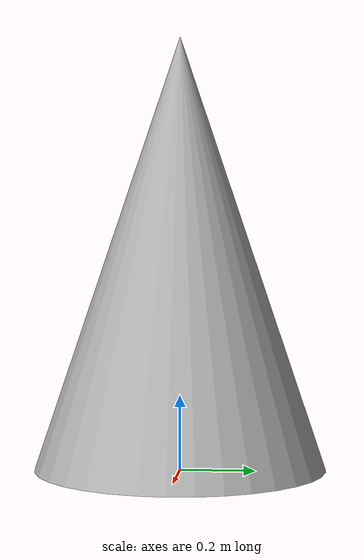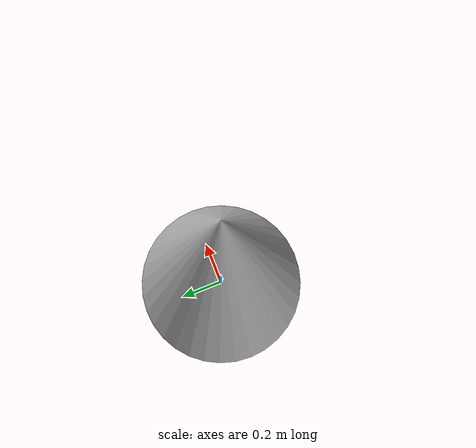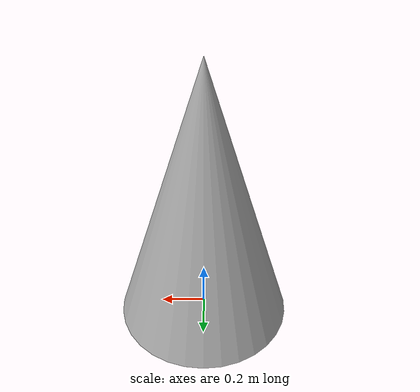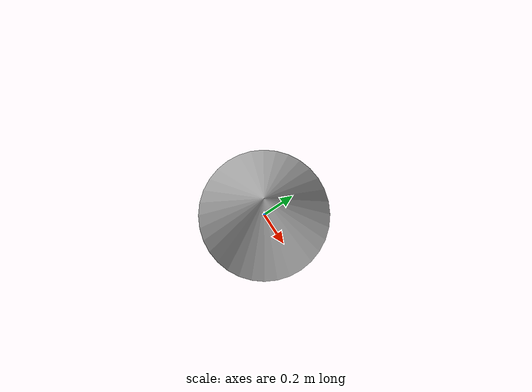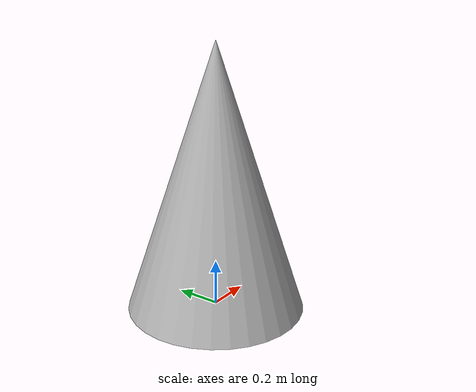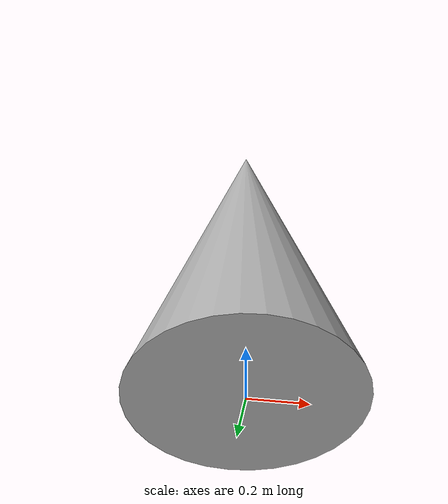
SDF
<?xml version='1.0'?>
<sdf version='1.4'>
  <model name="cone_blue">
    <link name="link">
      <collision name="collision">
        <geometry>
          <mesh>
            <uri>model://cone_blue/meshes/cone_blue.dae</uri>
     	      <scale>5 5 5</scale>
          </mesh>
        </geometry>
      </collision>
      <visual name="visual">
        <geometry>
          <mesh>
            <uri>model://cone_blue/meshes/cone_blue.dae</uri>
            <scale>5 5 5</scale>
          </mesh>
        </geometry>
      </visual>
    </link>
  </model>
</sdf>
